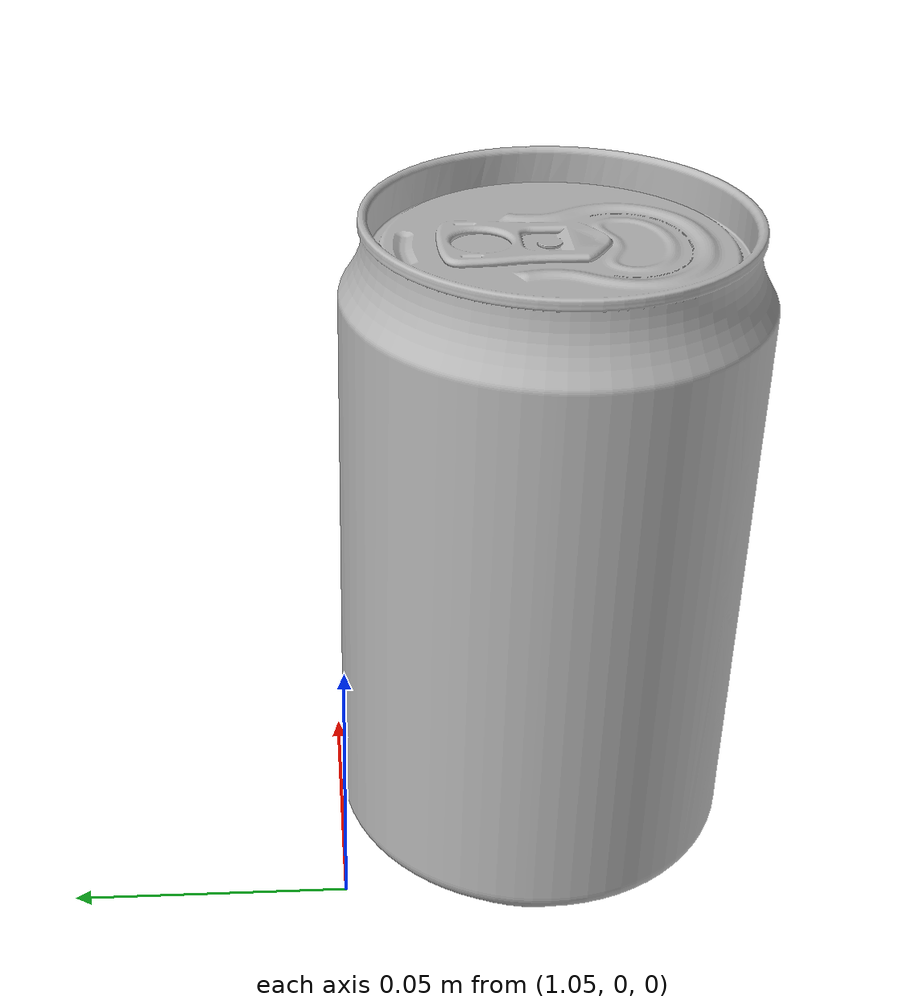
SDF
<?xml version="1.0" ?>
<sdf version="1.4">
  <model name="mpnet_pepsi">
    <pose frame="world">1 0 0.0 1.57079632679 0 0</pose>
    <static>true</static>
    <link name="link">
      <inertial>
        <mass>0.1</mass>
      </inertial>
      <visual name="visual">
        <geometry>
          <mesh>
            <uri>model://mpnet_pepsi/meshes/pepsi.STL</uri>
            <scale>0.001 0.001 0.001</scale>
          </mesh>
        </geometry>
      </visual>
    </link>
  </model>
</sdf>
